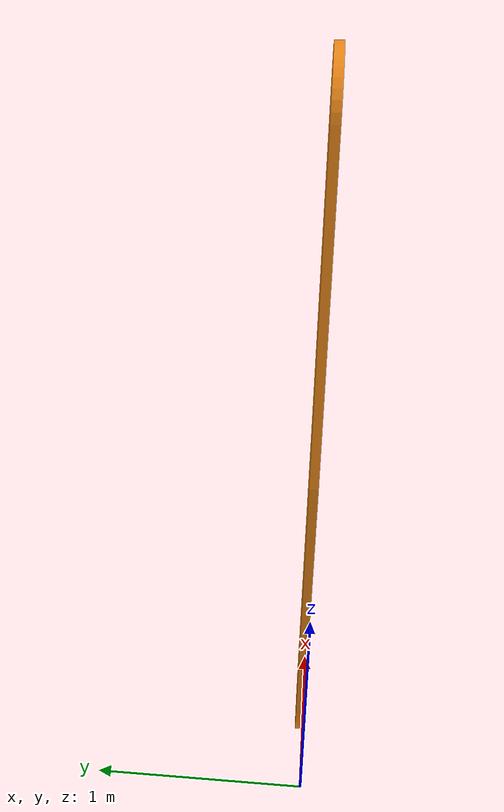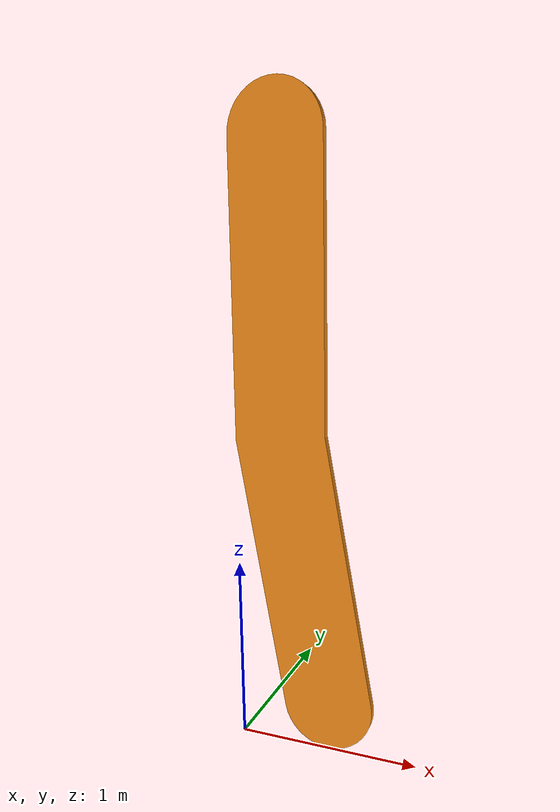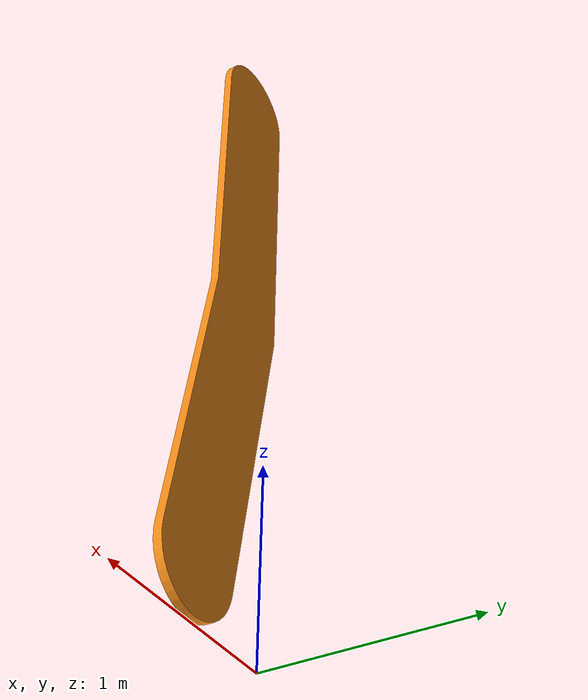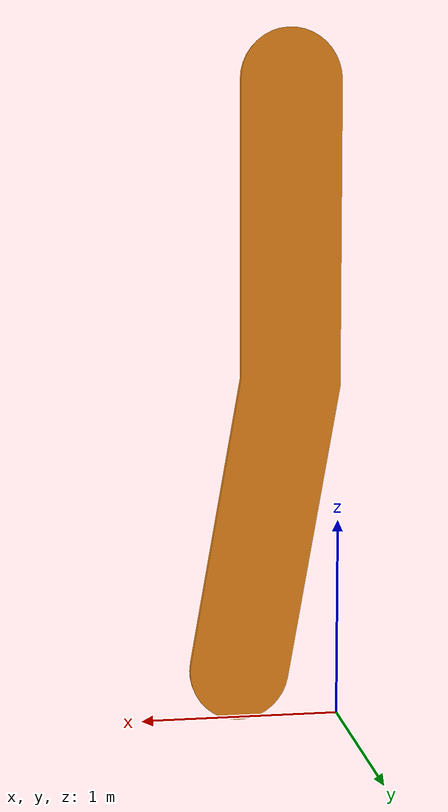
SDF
<?xml version="1.0" ?>
<sdf version="1.6">
  <model name="10deg">
    <static>true</static>
    <link name="link">
      <gravity>0</gravity>
      <collision name="collision">
        <geometry>
          <mesh>
            <scale>1 1 1</scale>
            <uri>model://10deg/meshes/10deg.dae</uri>
          </mesh>
        </geometry>
      </collision>
      <visual name="visual">
        <geometry>
          <mesh>
            <scale>1 1 1</scale>
            <uri>model://10deg/meshes/10deg.dae</uri>
          </mesh>
        </geometry>
	<material>
	  <script>
            <uri>file://media/materials/scripts/gazebo.material</uri>
	    <name>Gazebo/Orange</name>
	  </script>
	</material>
      </visual>
    </link>
  </model>
</sdf>
